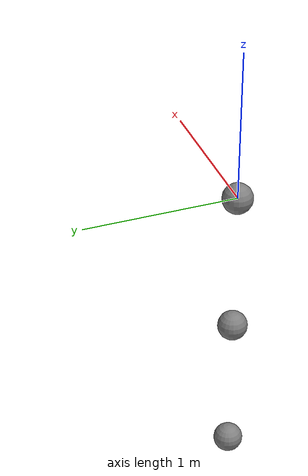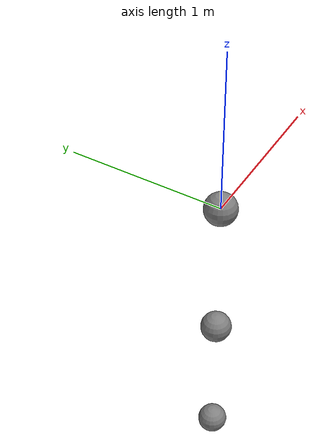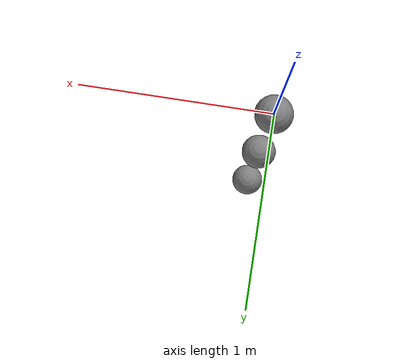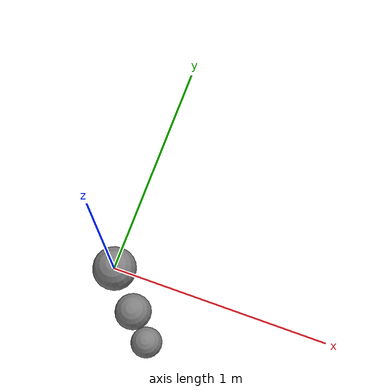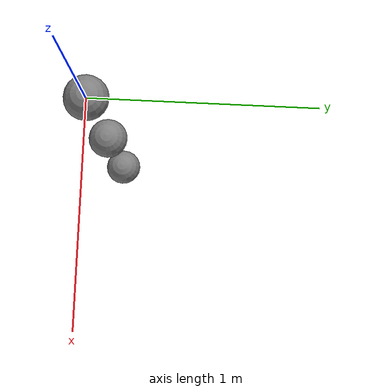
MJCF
<mujoco model="tendon_multi">
            <option timestep="0.001" integrator="implicitspringdamper" gravity="0 0 0"/>
            <worldbody>
                <body name="b1" pos="0 0 0">
                    <joint name="j0" type="hinge" axis="0 1 0"
                           stiffness="0" damping="0"/>
                    <geom type="sphere" size="0.1" mass="1.0"/>
                    <body name="b2" pos="0 0 -1">
                        <joint name="j1" type="hinge" axis="0 1 0"
                               stiffness="0" damping="0"/>
                        <geom type="sphere" size="0.1" mass="1.0"/>
                        <body name="b3" pos="0 0 -1">
                            <joint name="j2" type="hinge" axis="0 1 0"
                                   stiffness="0" damping="0"/>
                            <geom type="sphere" size="0.1" mass="1.0"/>
                        </body>
                    </body>
                </body>
            </worldbody>
            <tendon>
                <fixed name="t0" stiffness="50.0" damping="0.0"
                       springlength="0 0">
                    <joint joint="j0" coef="1.0"/>
                    <joint joint="j1" coef="-1.0"/>
                </fixed>
                <fixed name="t1" stiffness="30.0" damping="0.0"
                       springlength="0 0">
                    <joint joint="j1" coef="1.0"/>
                    <joint joint="j2" coef="-1.0"/>
                </fixed>
            </tendon>
        </mujoco>
